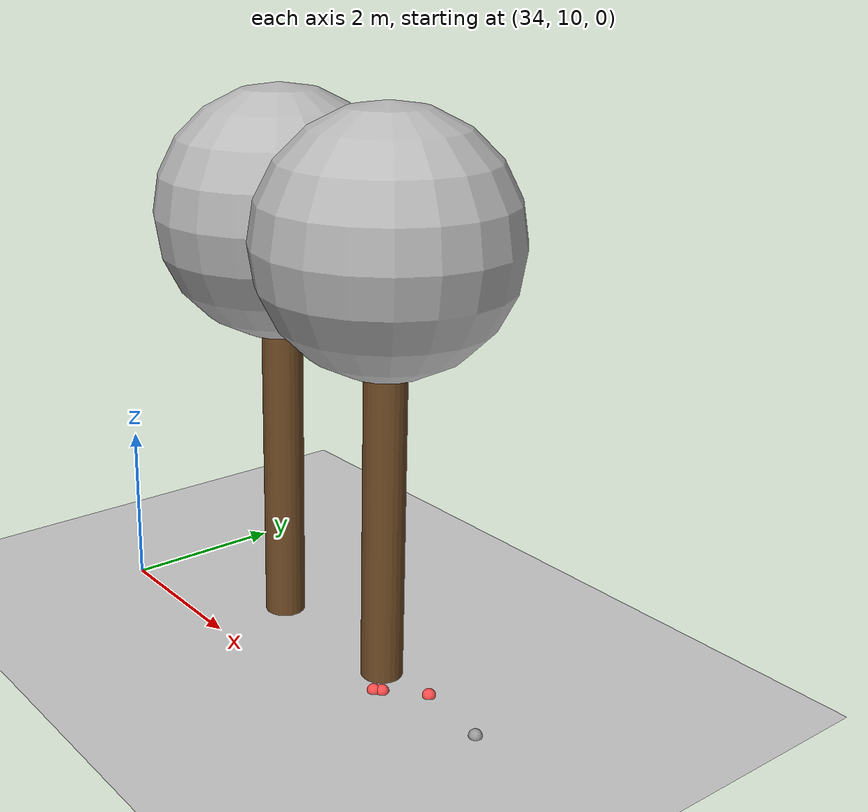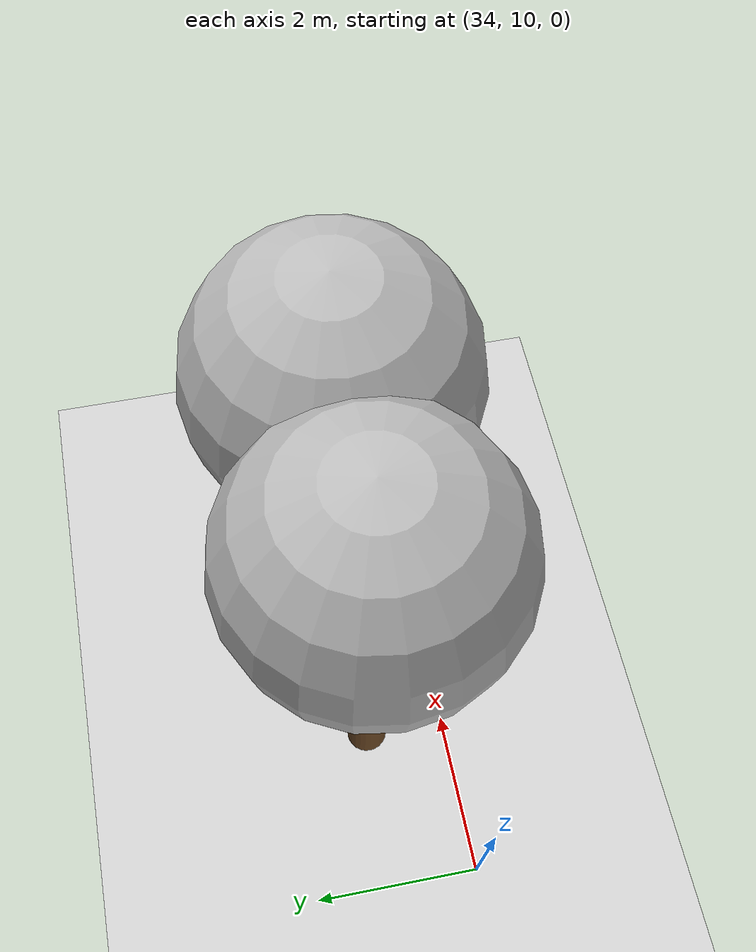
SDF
<sdf version="1.7">
 <world name="default">
  <model name="ground_plane">
   <static>1</static>
   <link name="link">
    <collision name="collision">
     <geometry><plane><normal>0 0 1</normal><size>100 100</size></plane></geometry>
     <surface>
      <contact><collide_bitmask>65535</collide_bitmask></contact>
      <friction><ode><mu>100</mu><mu2>50</mu2></ode></friction>
     </surface>
    </collision>
    <visual name="visual">
     <cast_shadows>0</cast_shadows>
     <geometry><plane><normal>0 0 1</normal><size>100 100</size></plane></geometry>
     <material>
      <script><uri>file://media/materials/scripts/gazebo.material</uri><name>Gazebo/Grey</name></script>
     </material>
    </visual>
   </link>
  </model>
  <model name="tree_simple_67">
   <static>1</static>
   <link name="link">
    <pose>0 0 0.1 0 -0 0</pose>
    <inertial>
     <mass>666</mass>
     <inertia>
      <ixx>0.0861167</ixx>
      <ixy>0</ixy>
      <ixz>0</ixz>
      <iyy>0.0861167</iyy>
      <iyz>0</iyz>
      <izz>0.0861167</izz>
     </inertia>
    </inertial>
    <collision name="collision_trunk">
     <pose>0 0 2 0 -0 0</pose>
     <geometry><cylinder><radius>0.25</radius><length>4</length></cylinder></geometry>
     <surface>
      <contact>
       <poissons_ratio>0.347</poissons_ratio>
       <elastic_modulus>8.8e+09</elastic_modulus>
       <ode><kp>100000</kp><kd>100</kd><max_vel>100</max_vel><min_depth>0.001</min_depth></ode>
      </contact>
      <friction>
       <torsional>
        <coefficient>1</coefficient>
        <use_patch_radius>0</use_patch_radius>
        <surface_radius>0.01</surface_radius>
       </torsional>
      </friction>
     </surface>
    </collision>
    <collision name="collision_treetop">
     <pose>0 0 5.2 0 -0 0</pose>
     <geometry><sphere><radius>1.5</radius></sphere></geometry>
     <surface>
      <contact>
       <poissons_ratio>0.347</poissons_ratio>
       <elastic_modulus>8.8e+09</elastic_modulus>
       <ode><kp>100000</kp><kd>100</kd><max_vel>100</max_vel><min_depth>0.001</min_depth></ode>
      </contact>
      <friction>
       <torsional>
        <coefficient>1</coefficient>
        <use_patch_radius>0</use_patch_radius>
        <surface_radius>0.01</surface_radius>
       </torsional>
      </friction>
     </surface>
    </collision>
    <visual name="trunk">
     <pose>0 0 2 0 -0 0</pose>
     <geometry><cylinder><radius>0.25</radius><length>4</length></cylinder></geometry>
     <material>
      <script>
       <uri>model://tree_simple/scripts</uri>
       <uri>model://tree_simple/materials/textures</uri>
       <name>TreeSimple/Trunk</name>
      </script>
     </material>
    </visual>
    <visual name="treetop">
     <pose>0 0 5.2 0 -0 0</pose>
     <geometry><sphere><radius>1.5</radius></sphere></geometry>
     <material>
      <script>
       <uri>model://tree_simple/scripts</uri>
       <uri>model://tree_simple/materials/textures</uri>
       <name>TreeSimple/Treetop</name>
      </script>
     </material>
    </visual>
   </link>
   <pose>36 11 -0.1 0 -0 0</pose>
  </model>
  <model name="tree_simple_68">
   <static>1</static>
   <link name="link">
    <pose>0 0 0.1 0 -0 0</pose>
    <inertial>
     <mass>666</mass>
     <inertia>
      <ixx>0.0861167</ixx>
      <ixy>0</ixy>
      <ixz>0</ixz>
      <iyy>0.0861167</iyy>
      <iyz>0</iyz>
      <izz>0.0861167</izz>
     </inertia>
    </inertial>
    <collision name="collision_trunk">
     <pose>0 0 2 0 -0 0</pose>
     <geometry><cylinder><radius>0.25</radius><length>4</length></cylinder></geometry>
     <surface>
      <contact>
       <poissons_ratio>0.347</poissons_ratio>
       <elastic_modulus>8.8e+09</elastic_modulus>
       <ode><kp>100000</kp><kd>100</kd><max_vel>100</max_vel><min_depth>0.001</min_depth></ode>
      </contact>
      <friction>
       <torsional>
        <coefficient>1</coefficient>
        <use_patch_radius>0</use_patch_radius>
        <surface_radius>0.01</surface_radius>
       </torsional>
      </friction>
     </surface>
    </collision>
    <collision name="collision_treetop">
     <pose>0 0 5.2 0 -0 0</pose>
     <geometry><sphere><radius>1.5</radius></sphere></geometry>
     <surface>
      <contact>
       <poissons_ratio>0.347</poissons_ratio>
       <elastic_modulus>8.8e+09</elastic_modulus>
       <ode><kp>100000</kp><kd>100</kd><max_vel>100</max_vel><min_depth>0.001</min_depth></ode>
      </contact>
      <friction>
       <torsional>
        <coefficient>1</coefficient>
        <use_patch_radius>0</use_patch_radius>
        <surface_radius>0.01</surface_radius>
       </torsional>
      </friction>
     </surface>
    </collision>
    <visual name="trunk">
     <pose>0 0 2 0 -0 0</pose>
     <geometry><cylinder><radius>0.25</radius><length>4</length></cylinder></geometry>
     <material>
      <script>
       <uri>model://tree_simple/scripts</uri>
       <uri>model://tree_simple/materials/textures</uri>
       <name>TreeSimple/Trunk</name>
      </script>
     </material>
    </visual>
    <visual name="treetop">
     <pose>0 0 5.2 0 -0 0</pose>
     <geometry><sphere><radius>1.5</radius></sphere></geometry>
     <material>
      <script>
       <uri>model://tree_simple/scripts</uri>
       <uri>model://tree_simple/materials/textures</uri>
       <name>TreeSimple/Treetop</name>
      </script>
     </material>
    </visual>
   </link>
   <pose>38 11 -0.1 0 -0 0</pose>
  </model>
  <model name="seed_red_283">
   <link name="link">
    <inertial>
     <mass>1</mass>
     <inertia><ixx>0.1</ixx><ixy>0</ixy><ixz>0</ixz><iyy>0.1</iyy><iyz>0</iyz><izz>0.1</izz></inertia>
    </inertial>
    <visual name="visual">
     <geometry><sphere><radius>0.08</radius></sphere></geometry>
     <material>
      <script><name>Gazebo/Grey</name><uri>file://media/materials/scripts/gazebo.material</uri></script>
      <shader type="pixel"><normal_map>__default__</normal_map></shader>
      <ambient>1 0.3 0.3 1</ambient>
      <diffuse>0.7 0.7 0.7 1</diffuse>
      <specular>0.01 0.01 0.01 1</specular>
      <emissive>0 0 0 1</emissive>
     </material>
    </visual>
    <collision name="collision">
     <geometry><sphere><radius>0.0005</radius></sphere></geometry>
     <surface>
      <friction>
       <ode><mu>1</mu><mu2>1</mu2><fdir1>0 0 0</fdir1><slip1>0</slip1><slip2>0</slip2></ode>
       <torsional>
        <coefficient>1</coefficient>
        <patch_radius>0</patch_radius>
        <surface_radius>0</surface_radius>
        <use_patch_radius>1</use_patch_radius>
        <ode><slip>0</slip></ode>
       </torsional>
      </friction>
      <bounce><restitution_coefficient>0</restitution_coefficient><threshold>1e+06</threshold></bounce>
      <contact>
       <collide_without_contact>0</collide_without_contact>
       <collide_without_contact_bitmask>1</collide_without_contact_bitmask>
       <collide_bitmask>1</collide_bitmask>
       <ode>
        <soft_cfm>0</soft_cfm>
        <soft_erp>0.2</soft_erp>
        <kp>1e+13</kp>
        <kd>1</kd>
        <max_vel>0.01</max_vel>
        <min_depth>0</min_depth>
       </ode>
       <bullet>
        <split_impulse>1</split_impulse>
        <split_impulse_penetration_threshold>-0.01</split_impulse_penetration_threshold>
        <soft_cfm>0</soft_cfm>
        <soft_erp>0.2</soft_erp>
        <kp>1e+13</kp>
        <kd>1</kd>
       </bullet>
      </contact>
     </surface>
    </collision>
   </link>
   <static>0</static>
   <pose>38.2562 10.6813 0.0005 0 -0 0</pose>
  </model>
  <model name="seed_red_284">
   <link name="link">
    <inertial>
     <mass>1</mass>
     <inertia><ixx>0.1</ixx><ixy>0</ixy><ixz>0</ixz><iyy>0.1</iyy><iyz>0</iyz><izz>0.1</izz></inertia>
    </inertial>
    <visual name="visual">
     <geometry><sphere><radius>0.08</radius></sphere></geometry>
     <material>
      <script><name>Gazebo/Grey</name><uri>file://media/materials/scripts/gazebo.material</uri></script>
      <shader type="pixel"><normal_map>__default__</normal_map></shader>
      <ambient>1 0.3 0.3 1</ambient>
      <diffuse>0.7 0.7 0.7 1</diffuse>
      <specular>0.01 0.01 0.01 1</specular>
      <emissive>0 0 0 1</emissive>
     </material>
    </visual>
    <collision name="collision">
     <geometry><sphere><radius>0.0005</radius></sphere></geometry>
     <surface>
      <friction>
       <ode><mu>1</mu><mu2>1</mu2><fdir1>0 0 0</fdir1><slip1>0</slip1><slip2>0</slip2></ode>
       <torsional>
        <coefficient>1</coefficient>
        <patch_radius>0</patch_radius>
        <surface_radius>0</surface_radius>
        <use_patch_radius>1</use_patch_radius>
        <ode><slip>0</slip></ode>
       </torsional>
      </friction>
      <bounce><restitution_coefficient>0</restitution_coefficient><threshold>1e+06</threshold></bounce>
      <contact>
       <collide_without_contact>0</collide_without_contact>
       <collide_without_contact_bitmask>1</collide_without_contact_bitmask>
       <collide_bitmask>1</collide_bitmask>
       <ode>
        <soft_cfm>0</soft_cfm>
        <soft_erp>0.2</soft_erp>
        <kp>1e+13</kp>
        <kd>1</kd>
        <max_vel>0.01</max_vel>
        <min_depth>0</min_depth>
       </ode>
       <bullet>
        <split_impulse>1</split_impulse>
        <split_impulse_penetration_threshold>-0.01</split_impulse_penetration_threshold>
        <soft_cfm>0</soft_cfm>
        <soft_erp>0.2</soft_erp>
        <kp>1e+13</kp>
        <kd>1</kd>
       </bullet>
      </contact>
     </surface>
    </collision>
   </link>
   <static>0</static>
   <pose>38.3271 10.7509 0.0005 0 -0 0</pose>
  </model>
  <model name="seed_red_285">
   <link name="link">
    <inertial>
     <mass>1</mass>
     <inertia><ixx>0.1</ixx><ixy>0</ixy><ixz>0</ixz><iyy>0.1</iyy><iyz>0</iyz><izz>0.1</izz></inertia>
    </inertial>
    <visual name="visual">
     <geometry><sphere><radius>0.08</radius></sphere></geometry>
     <material>
      <script><name>Gazebo/Grey</name><uri>file://media/materials/scripts/gazebo.material</uri></script>
      <shader type="pixel"><normal_map>__default__</normal_map></shader>
      <ambient>1 0.3 0.3 1</ambient>
      <diffuse>0.7 0.7 0.7 1</diffuse>
      <specular>0.01 0.01 0.01 1</specular>
      <emissive>0 0 0 1</emissive>
     </material>
    </visual>
    <collision name="collision">
     <geometry><sphere><radius>0.0005</radius></sphere></geometry>
     <surface>
      <friction>
       <ode><mu>1</mu><mu2>1</mu2><fdir1>0 0 0</fdir1><slip1>0</slip1><slip2>0</slip2></ode>
       <torsional>
        <coefficient>1</coefficient>
        <patch_radius>0</patch_radius>
        <surface_radius>0</surface_radius>
        <use_patch_radius>1</use_patch_radius>
        <ode><slip>0</slip></ode>
       </torsional>
      </friction>
      <bounce><restitution_coefficient>0</restitution_coefficient><threshold>1e+06</threshold></bounce>
      <contact>
       <collide_without_contact>0</collide_without_contact>
       <collide_without_contact_bitmask>1</collide_without_contact_bitmask>
       <collide_bitmask>1</collide_bitmask>
       <ode>
        <soft_cfm>0</soft_cfm>
        <soft_erp>0.2</soft_erp>
        <kp>1e+13</kp>
        <kd>1</kd>
        <max_vel>0.01</max_vel>
        <min_depth>0</min_depth>
       </ode>
       <bullet>
        <split_impulse>1</split_impulse>
        <split_impulse_penetration_threshold>-0.01</split_impulse_penetration_threshold>
        <soft_cfm>0</soft_cfm>
        <soft_erp>0.2</soft_erp>
        <kp>1e+13</kp>
        <kd>1</kd>
       </bullet>
      </contact>
     </surface>
    </collision>
   </link>
   <static>0</static>
   <pose>38.7175 11.1259 0.0005 0 -0 0</pose>
  </model>
  <model name="seed_black_53">
   <link name="link">
    <inertial>
     <mass>1</mass>
     <inertia><ixx>0.1</ixx><ixy>0</ixy><ixz>0</ixz><iyy>0.1</iyy><iyz>0</iyz><izz>0.1</izz></inertia>
    </inertial>
    <visual name="visual">
     <geometry><sphere><radius>0.08</radius></sphere></geometry>
     <material>
      <script><name>Gazebo/Grey</name><uri>file://media/materials/scripts/gazebo.material</uri></script>
      <shader type="pixel"><normal_map>__default__</normal_map></shader>
      <ambient>0 0 0 1</ambient>
      <diffuse>0.7 0.7 0.7 1</diffuse>
      <specular>0.01 0.01 0.01 1</specular>
      <emissive>0 0 0 1</emissive>
     </material>
    </visual>
    <collision name="collision">
     <geometry><sphere><radius>0.0005</radius></sphere></geometry>
     <surface>
      <friction>
       <ode><mu>1</mu><mu2>1</mu2><fdir1>0 0 0</fdir1><slip1>0</slip1><slip2>0</slip2></ode>
       <torsional>
        <coefficient>1</coefficient>
        <patch_radius>0</patch_radius>
        <surface_radius>0</surface_radius>
        <use_patch_radius>1</use_patch_radius>
        <ode><slip>0</slip></ode>
       </torsional>
      </friction>
      <bounce><restitution_coefficient>0</restitution_coefficient><threshold>1e+06</threshold></bounce>
      <contact>
       <collide_without_contact>0</collide_without_contact>
       <collide_without_contact_bitmask>1</collide_without_contact_bitmask>
       <collide_bitmask>1</collide_bitmask>
       <ode>
        <soft_cfm>0</soft_cfm>
        <soft_erp>0.2</soft_erp>
        <kp>1e+13</kp>
        <kd>1</kd>
        <max_vel>0.01</max_vel>
        <min_depth>0</min_depth>
       </ode>
       <bullet>
        <split_impulse>1</split_impulse>
        <split_impulse_penetration_threshold>-0.01</split_impulse_penetration_threshold>
        <soft_cfm>0</soft_cfm>
        <soft_erp>0.2</soft_erp>
        <kp>1e+13</kp>
        <kd>1</kd>
       </bullet>
      </contact>
     </surface>
    </collision>
   </link>
   <static>0</static>
   <pose>39.6349 11.0081 0.0005 0 -0 0</pose>
  </model>
 </world>
</sdf>
